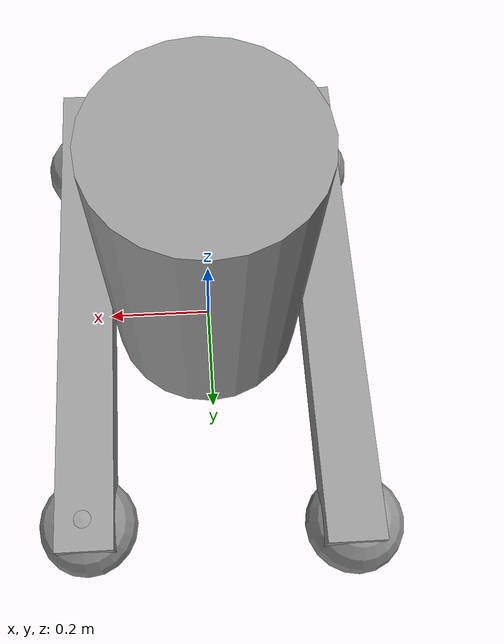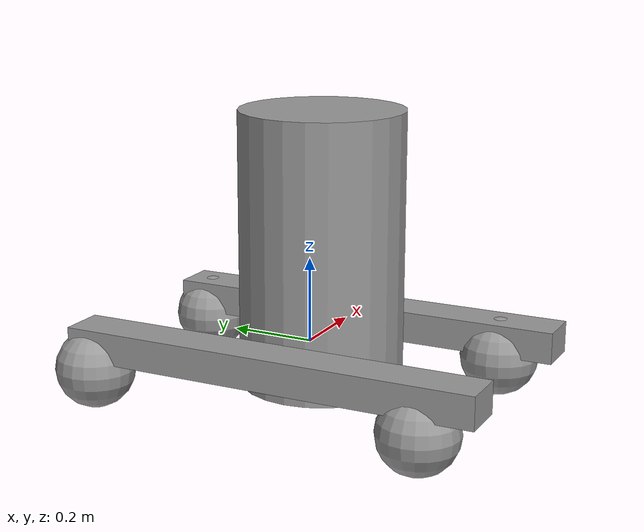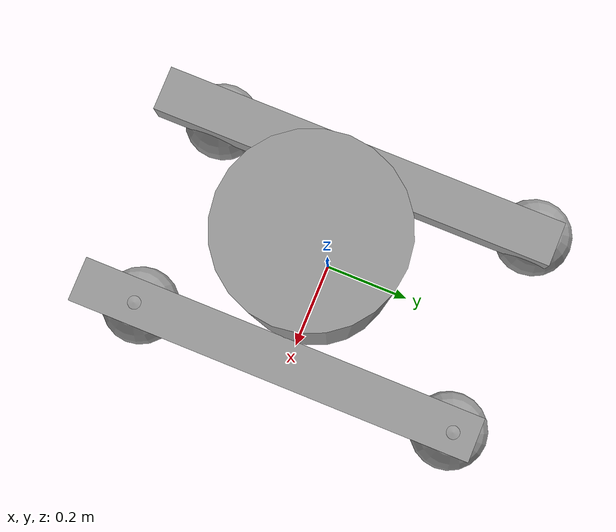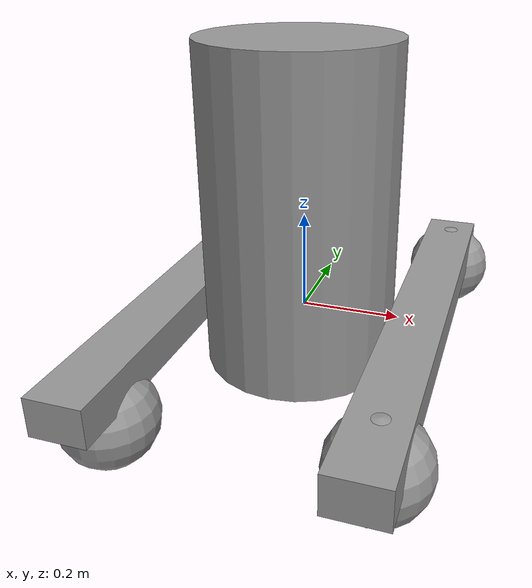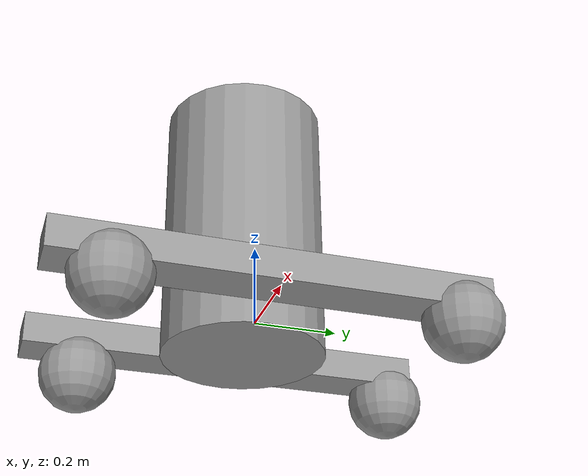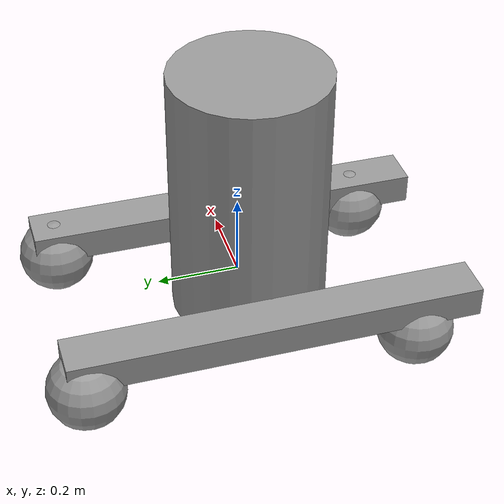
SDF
<?xml version='1.0'?>
<sdf version='1.6'>
  <model name='my_home_robot'>
    <link name='link_0'>
      <pose frame=''>-0.244653 -0.020924 0.010285 0 -0 0</pose>
      <inertial>
        <mass>0.00825354</mass>
        <inertia>
          <ixx>0.000691755</ixx>
          <ixy>0</ixy>
          <ixz>0</ixz>
          <iyy>1.20977e-05</iyy>
          <iyz>0</iyz>
          <izz>0.000695933</izz>
        </inertia>
        <pose frame=''>0 0 0 0 -0 0</pose>
      </inertial>
      <visual name='visual'>
        <pose frame=''>0 0 0 0 -0 0</pose>
        <geometry>
          <box>
            <size>0.108773 1 0.075875</size>
          </box>
        </geometry>
        <material>
          <lighting>1</lighting>
          <script>
            <uri>file://media/materials/scripts/gazebo.material</uri>
            <name>Gazebo/Grey</name>
          </script>
          <ambient>0.3 0.3 0.3 1</ambient>
          <diffuse>0.7 0.7 0.7 1</diffuse>
          <specular>0.01 0.01 0.01 1</specular>
          <emissive>0 0 0 1</emissive>
        </material>
        <transparency>0</transparency>
        <cast_shadows>1</cast_shadows>
      </visual>
      <collision name='collision'>
        <laser_retro>0</laser_retro>
        <max_contacts>10</max_contacts>
        <pose frame=''>0 0 0 0 -0 0</pose>
        <geometry>
          <box>
            <size>0.108773 1 0.075875</size>
          </box>
        </geometry>
        <surface>
          <friction>
            <ode>
              <mu>1</mu>
              <mu2>1</mu2>
              <fdir1>0 0 0</fdir1>
              <slip1>0</slip1>
              <slip2>0</slip2>
            </ode>
            <torsional>
              <coefficient>1</coefficient>
              <patch_radius>0</patch_radius>
              <surface_radius>0</surface_radius>
              <use_patch_radius>1</use_patch_radius>
              <ode>
                <slip>0</slip>
              </ode>
            </torsional>
          </friction>
          <bounce>
            <restitution_coefficient>0</restitution_coefficient>
            <threshold>1e+06</threshold>
          </bounce>
          <contact>
            <collide_without_contact>0</collide_without_contact>
            <collide_without_contact_bitmask>1</collide_without_contact_bitmask>
            <collide_bitmask>1</collide_bitmask>
            <ode>
              <soft_cfm>0</soft_cfm>
              <soft_erp>0.2</soft_erp>
              <kp>1e+13</kp>
              <kd>1</kd>
              <max_vel>0.01</max_vel>
              <min_depth>0</min_depth>
            </ode>
            <bullet>
              <split_impulse>1</split_impulse>
              <split_impulse_penetration_threshold>-0.01</split_impulse_penetration_threshold>
              <soft_cfm>0</soft_cfm>
              <soft_erp>0.2</soft_erp>
              <kp>1e+13</kp>
              <kd>1</kd>
            </bullet>
          </contact>
        </surface>
      </collision>
    </link>
    <link name='link_0_clone'>
      <pose frame=''>0.247459 -0.030453 -0.000446 0 -0 0</pose>
      <inertial>
        <mass>0.00825354</mass>
        <inertia>
          <ixx>0.000691755</ixx>
          <ixy>0</ixy>
          <ixz>0</ixz>
          <iyy>1.20977e-05</iyy>
          <iyz>0</iyz>
          <izz>0.000695933</izz>
        </inertia>
        <pose frame=''>0 0 0 0 -0 0</pose>
      </inertial>
      <visual name='visual'>
        <pose frame=''>0 0 0 0 -0 0</pose>
        <geometry>
          <box>
            <size>0.108773 1 0.075875</size>
          </box>
        </geometry>
        <material>
          <lighting>1</lighting>
          <script>
            <uri>file://media/materials/scripts/gazebo.material</uri>
            <name>Gazebo/Grey</name>
          </script>
          <ambient>0.3 0.3 0.3 1</ambient>
          <diffuse>0.7 0.7 0.7 1</diffuse>
          <specular>0.01 0.01 0.01 1</specular>
          <emissive>0 0 0 1</emissive>
          <shader type='pixel'/>
        </material>
        <transparency>0</transparency>
        <cast_shadows>1</cast_shadows>
      </visual>
      <collision name='collision'>
        <laser_retro>0</laser_retro>
        <max_contacts>10</max_contacts>
        <pose frame=''>0 0 0 0 -0 0</pose>
        <geometry>
          <box>
            <size>0.108773 1 0.075875</size>
          </box>
        </geometry>
        <surface>
          <friction>
            <ode>
              <mu>1</mu>
              <mu2>1</mu2>
              <fdir1>0 0 0</fdir1>
              <slip1>0</slip1>
              <slip2>0</slip2>
            </ode>
            <torsional>
              <coefficient>1</coefficient>
              <patch_radius>0</patch_radius>
              <surface_radius>0</surface_radius>
              <use_patch_radius>1</use_patch_radius>
              <ode>
                <slip>0</slip>
              </ode>
            </torsional>
          </friction>
          <bounce>
            <restitution_coefficient>0</restitution_coefficient>
            <threshold>1e+06</threshold>
          </bounce>
          <contact>
            <collide_without_contact>0</collide_without_contact>
            <collide_without_contact_bitmask>1</collide_without_contact_bitmask>
            <collide_bitmask>1</collide_bitmask>
            <ode>
              <soft_cfm>0</soft_cfm>
              <soft_erp>0.2</soft_erp>
              <kp>1e+13</kp>
              <kd>1</kd>
              <max_vel>0.01</max_vel>
              <min_depth>0</min_depth>
            </ode>
            <bullet>
              <split_impulse>1</split_impulse>
              <split_impulse_penetration_threshold>-0.01</split_impulse_penetration_threshold>
              <soft_cfm>0</soft_cfm>
              <soft_erp>0.2</soft_erp>
              <kp>1e+13</kp>
              <kd>1</kd>
            </bullet>
          </contact>
        </surface>
      </collision>
    </link>
    <link name='link_1'>
      <pose frame=''>-0.245407 -0.378361 -0.076364 0 -0 0</pose>
      <inertial>
        <mass>0.0067402</mass>
        <inertia>
          <ixx>2.40504e-05</ixx>
          <ixy>0</ixy>
          <ixz>0</ixz>
          <iyy>2.40504e-05</iyy>
          <iyz>0</iyz>
          <izz>2.40504e-05</izz>
        </inertia>
        <pose frame=''>0 0 0 0 -0 0</pose>
      </inertial>
      <visual name='visual'>
        <pose frame=''>0 0 0 0 -0 0</pose>
        <geometry>
          <sphere>
            <radius>0.0944485</radius>
          </sphere>
        </geometry>
        <material>
          <lighting>1</lighting>
          <script>
            <uri>file://media/materials/scripts/gazebo.material</uri>
            <name>Gazebo/Grey</name>
          </script>
          <ambient>0.3 0.3 0.3 1</ambient>
          <diffuse>0.7 0.7 0.7 1</diffuse>
          <specular>0.01 0.01 0.01 1</specular>
          <emissive>0 0 0 1</emissive>
        </material>
        <transparency>0</transparency>
        <cast_shadows>1</cast_shadows>
      </visual>
      <collision name='collision'>
        <laser_retro>0</laser_retro>
        <max_contacts>10</max_contacts>
        <pose frame=''>0 0 0 0 -0 0</pose>
        <geometry>
          <sphere>
            <radius>0.094448</radius>
          </sphere>
        </geometry>
        <surface>
          <friction>
            <ode>
              <mu>1</mu>
              <mu2>1</mu2>
              <fdir1>0 0 0</fdir1>
              <slip1>0</slip1>
              <slip2>0</slip2>
            </ode>
            <torsional>
              <coefficient>1</coefficient>
              <patch_radius>0</patch_radius>
              <surface_radius>0</surface_radius>
              <use_patch_radius>1</use_patch_radius>
              <ode>
                <slip>0</slip>
              </ode>
            </torsional>
          </friction>
          <bounce>
            <restitution_coefficient>0</restitution_coefficient>
            <threshold>1e+06</threshold>
          </bounce>
          <contact>
            <collide_without_contact>0</collide_without_contact>
            <collide_without_contact_bitmask>1</collide_without_contact_bitmask>
            <collide_bitmask>1</collide_bitmask>
            <ode>
              <soft_cfm>0</soft_cfm>
              <soft_erp>0.2</soft_erp>
              <kp>1e+13</kp>
              <kd>1</kd>
              <max_vel>0.01</max_vel>
              <min_depth>0</min_depth>
            </ode>
            <bullet>
              <split_impulse>1</split_impulse>
              <split_impulse_penetration_threshold>-0.01</split_impulse_penetration_threshold>
              <soft_cfm>0</soft_cfm>
              <soft_erp>0.2</soft_erp>
              <kp>1e+13</kp>
              <kd>1</kd>
            </bullet>
          </contact>
        </surface>
      </collision>
    </link>
    <link name='link_1_clone'>
      <pose frame=''>-0.258686 0.432742 -0.054398 0 -0 0</pose>
      <inertial>
        <mass>0.0067402</mass>
        <inertia>
          <ixx>2.40504e-05</ixx>
          <ixy>0</ixy>
          <ixz>0</ixz>
          <iyy>2.40504e-05</iyy>
          <iyz>0</iyz>
          <izz>2.40504e-05</izz>
        </inertia>
        <pose frame=''>0 0 0 0 -0 0</pose>
      </inertial>
      <visual name='visual'>
        <pose frame=''>0 0 0 0 -0 0</pose>
        <geometry>
          <sphere>
            <radius>0.0944485</radius>
          </sphere>
        </geometry>
        <material>
          <lighting>1</lighting>
          <script>
            <uri>file://media/materials/scripts/gazebo.material</uri>
            <name>Gazebo/Grey</name>
          </script>
          <ambient>0.3 0.3 0.3 1</ambient>
          <diffuse>0.7 0.7 0.7 1</diffuse>
          <specular>0.01 0.01 0.01 1</specular>
          <emissive>0 0 0 1</emissive>
          <shader type='pixel'/>
        </material>
        <transparency>0</transparency>
        <cast_shadows>1</cast_shadows>
      </visual>
      <collision name='collision'>
        <laser_retro>0</laser_retro>
        <max_contacts>10</max_contacts>
        <pose frame=''>0 0 0 0 -0 0</pose>
        <geometry>
          <sphere>
            <radius>0.094448</radius>
          </sphere>
        </geometry>
        <surface>
          <friction>
            <ode>
              <mu>1</mu>
              <mu2>1</mu2>
              <fdir1>0 0 0</fdir1>
              <slip1>0</slip1>
              <slip2>0</slip2>
            </ode>
            <torsional>
              <coefficient>1</coefficient>
              <patch_radius>0</patch_radius>
              <surface_radius>0</surface_radius>
              <use_patch_radius>1</use_patch_radius>
              <ode>
                <slip>0</slip>
              </ode>
            </torsional>
          </friction>
          <bounce>
            <restitution_coefficient>0</restitution_coefficient>
            <threshold>1e+06</threshold>
          </bounce>
          <contact>
            <collide_without_contact>0</collide_without_contact>
            <collide_without_contact_bitmask>1</collide_without_contact_bitmask>
            <collide_bitmask>1</collide_bitmask>
            <ode>
              <soft_cfm>0</soft_cfm>
              <soft_erp>0.2</soft_erp>
              <kp>1e+13</kp>
              <kd>1</kd>
              <max_vel>0.01</max_vel>
              <min_depth>0</min_depth>
            </ode>
            <bullet>
              <split_impulse>1</split_impulse>
              <split_impulse_penetration_threshold>-0.01</split_impulse_penetration_threshold>
              <soft_cfm>0</soft_cfm>
              <soft_erp>0.2</soft_erp>
              <kp>1e+13</kp>
              <kd>1</kd>
            </bullet>
          </contact>
        </surface>
      </collision>
    </link>
    <link name='link_1_clone_clone'>
      <pose frame=''>0.249418 -0.384995 -0.054398 0 -0 0</pose>
      <inertial>
        <mass>0.0067402</mass>
        <inertia>
          <ixx>2.40504e-05</ixx>
          <ixy>0</ixy>
          <ixz>0</ixz>
          <iyy>2.40504e-05</iyy>
          <iyz>0</iyz>
          <izz>2.40504e-05</izz>
        </inertia>
        <pose frame=''>0 0 0 0 -0 0</pose>
      </inertial>
      <visual name='visual'>
        <pose frame=''>0 0 0 0 -0 0</pose>
        <geometry>
          <sphere>
            <radius>0.0944485</radius>
          </sphere>
        </geometry>
        <material>
          <lighting>1</lighting>
          <script>
            <uri>file://media/materials/scripts/gazebo.material</uri>
            <name>Gazebo/Grey</name>
          </script>
          <ambient>0.3 0.3 0.3 1</ambient>
          <diffuse>0.7 0.7 0.7 1</diffuse>
          <specular>0.01 0.01 0.01 1</specular>
          <emissive>0 0 0 1</emissive>
          <shader type='pixel'/>
        </material>
        <transparency>0</transparency>
        <cast_shadows>1</cast_shadows>
      </visual>
      <collision name='collision'>
        <laser_retro>0</laser_retro>
        <max_contacts>10</max_contacts>
        <pose frame=''>0 0 0 0 -0 0</pose>
        <geometry>
          <sphere>
            <radius>0.094448</radius>
          </sphere>
        </geometry>
        <surface>
          <friction>
            <ode>
              <mu>1</mu>
              <mu2>1</mu2>
              <fdir1>0 0 0</fdir1>
              <slip1>0</slip1>
              <slip2>0</slip2>
            </ode>
            <torsional>
              <coefficient>1</coefficient>
              <patch_radius>0</patch_radius>
              <surface_radius>0</surface_radius>
              <use_patch_radius>1</use_patch_radius>
              <ode>
                <slip>0</slip>
              </ode>
            </torsional>
          </friction>
          <bounce>
            <restitution_coefficient>0</restitution_coefficient>
            <threshold>1e+06</threshold>
          </bounce>
          <contact>
            <collide_without_contact>0</collide_without_contact>
            <collide_without_contact_bitmask>1</collide_without_contact_bitmask>
            <collide_bitmask>1</collide_bitmask>
            <ode>
              <soft_cfm>0</soft_cfm>
              <soft_erp>0.2</soft_erp>
              <kp>1e+13</kp>
              <kd>1</kd>
              <max_vel>0.01</max_vel>
              <min_depth>0</min_depth>
            </ode>
            <bullet>
              <split_impulse>1</split_impulse>
              <split_impulse_penetration_threshold>-0.01</split_impulse_penetration_threshold>
              <soft_cfm>0</soft_cfm>
              <soft_erp>0.2</soft_erp>
              <kp>1e+13</kp>
              <kd>1</kd>
            </bullet>
          </contact>
        </surface>
      </collision>
    </link>
    <link name='link_1_clone_clone_0'>
      <pose frame=''>0.250395 0.412433 -0.054398 0 -0 0</pose>
      <inertial>
        <mass>0.0067402</mass>
        <inertia>
          <ixx>2.40504e-05</ixx>
          <ixy>0</ixy>
          <ixz>0</ixz>
          <iyy>2.40504e-05</iyy>
          <iyz>0</iyz>
          <izz>2.40504e-05</izz>
        </inertia>
        <pose frame=''>0 0 0 0 -0 0</pose>
      </inertial>
      <visual name='visual'>
        <pose frame=''>0 0 0 0 -0 0</pose>
        <geometry>
          <sphere>
            <radius>0.0944485</radius>
          </sphere>
        </geometry>
        <material>
          <lighting>1</lighting>
          <script>
            <uri>file://media/materials/scripts/gazebo.material</uri>
            <name>Gazebo/Grey</name>
          </script>
          <ambient>0.3 0.3 0.3 1</ambient>
          <diffuse>0.7 0.7 0.7 1</diffuse>
          <specular>0.01 0.01 0.01 1</specular>
          <emissive>0 0 0 1</emissive>
          <shader type='pixel'/>
        </material>
        <transparency>0</transparency>
        <cast_shadows>1</cast_shadows>
      </visual>
      <collision name='collision'>
        <laser_retro>0</laser_retro>
        <max_contacts>10</max_contacts>
        <pose frame=''>0 0 0 0 -0 0</pose>
        <geometry>
          <sphere>
            <radius>0.094448</radius>
          </sphere>
        </geometry>
        <surface>
          <friction>
            <ode>
              <mu>1</mu>
              <mu2>1</mu2>
              <fdir1>0 0 0</fdir1>
              <slip1>0</slip1>
              <slip2>0</slip2>
            </ode>
            <torsional>
              <coefficient>1</coefficient>
              <patch_radius>0</patch_radius>
              <surface_radius>0</surface_radius>
              <use_patch_radius>1</use_patch_radius>
              <ode>
                <slip>0</slip>
              </ode>
            </torsional>
          </friction>
          <bounce>
            <restitution_coefficient>0</restitution_coefficient>
            <threshold>1e+06</threshold>
          </bounce>
          <contact>
            <collide_without_contact>0</collide_without_contact>
            <collide_without_contact_bitmask>1</collide_without_contact_bitmask>
            <collide_bitmask>1</collide_bitmask>
            <ode>
              <soft_cfm>0</soft_cfm>
              <soft_erp>0.2</soft_erp>
              <kp>1e+13</kp>
              <kd>1</kd>
              <max_vel>0.01</max_vel>
              <min_depth>0</min_depth>
            </ode>
            <bullet>
              <split_impulse>1</split_impulse>
              <split_impulse_penetration_threshold>-0.01</split_impulse_penetration_threshold>
              <soft_cfm>0</soft_cfm>
              <soft_erp>0.2</soft_erp>
              <kp>1e+13</kp>
              <kd>1</kd>
            </bullet>
          </contact>
        </surface>
      </collision>
    </link>
    <link name='link_2'>
      <pose frame=''>0.00146 -0.030453 0.22972 0 -0 0</pose>
      <inertial>
        <mass>0.0956891</mass>
        <inertia>
          <ixx>0.00419688</ixx>
          <ixy>0</ixy>
          <ixz>0</ixz>
          <iyy>0.00419688</iyy>
          <iyz>0</iyz>
          <izz>0.00177691</izz>
        </inertia>
        <pose frame=''>0 0 0 0 -0 0</pose>
      </inertial>
      <visual name='visual'>
        <pose frame=''>0 0 0 0 -0 0</pose>
        <geometry>
          <cylinder>
            <radius>0.192691</radius>
            <length>0.64411</length>
          </cylinder>
        </geometry>
        <material>
          <lighting>1</lighting>
          <script>
            <uri>file://media/materials/scripts/gazebo.material</uri>
            <name>Gazebo/Grey</name>
          </script>
          <ambient>0.3 0.3 0.3 1</ambient>
          <diffuse>0.7 0.7 0.7 1</diffuse>
          <specular>0.01 0.01 0.01 1</specular>
          <emissive>0 0 0 1</emissive>
        </material>
        <transparency>0</transparency>
        <cast_shadows>1</cast_shadows>
      </visual>
      <collision name='collision'>
        <laser_retro>0</laser_retro>
        <max_contacts>10</max_contacts>
        <pose frame=''>0 0 0 0 -0 0</pose>
        <geometry>
          <cylinder>
            <radius>0.192691</radius>
            <length>0.64411</length>
          </cylinder>
        </geometry>
        <surface>
          <friction>
            <ode>
              <mu>1</mu>
              <mu2>1</mu2>
              <fdir1>0 0 0</fdir1>
              <slip1>0</slip1>
              <slip2>0</slip2>
            </ode>
            <torsional>
              <coefficient>1</coefficient>
              <patch_radius>0</patch_radius>
              <surface_radius>0</surface_radius>
              <use_patch_radius>1</use_patch_radius>
              <ode>
                <slip>0</slip>
              </ode>
            </torsional>
          </friction>
          <bounce>
            <restitution_coefficient>0</restitution_coefficient>
            <threshold>1e+06</threshold>
          </bounce>
          <contact>
            <collide_without_contact>0</collide_without_contact>
            <collide_without_contact_bitmask>1</collide_without_contact_bitmask>
            <collide_bitmask>1</collide_bitmask>
            <ode>
              <soft_cfm>0</soft_cfm>
              <soft_erp>0.2</soft_erp>
              <kp>1e+13</kp>
              <kd>1</kd>
              <max_vel>0.01</max_vel>
              <min_depth>0</min_depth>
            </ode>
            <bullet>
              <split_impulse>1</split_impulse>
              <split_impulse_penetration_threshold>-0.01</split_impulse_penetration_threshold>
              <soft_cfm>0</soft_cfm>
              <soft_erp>0.2</soft_erp>
              <kp>1e+13</kp>
              <kd>1</kd>
            </bullet>
          </contact>
        </surface>
      </collision>
    </link>
    <joint name='link_0_JOINT_0' type='ball'>
      <parent>link_0</parent>
      <child>link_1</child>
      <pose frame=''>0 0 0 0 -0 0</pose>
      <physics>
        <ode>
          <limit>
            <cfm>0</cfm>
            <erp>0.2</erp>
          </limit>
          <suspension>
            <cfm>0</cfm>
            <erp>0.2</erp>
          </suspension>
        </ode>
      </physics>
    </joint>
    <joint name='link_0_JOINT_1' type='ball'>
      <parent>link_0</parent>
      <child>link_1_clone</child>
      <pose frame=''>0 0 0 0 -0 0</pose>
      <physics>
        <ode>
          <limit>
            <cfm>0</cfm>
            <erp>0.2</erp>
          </limit>
          <suspension>
            <cfm>0</cfm>
            <erp>0.2</erp>
          </suspension>
        </ode>
      </physics>
    </joint>
    <joint name='link_0_clone_JOINT_2' type='ball'>
      <parent>link_0_clone</parent>
      <child>link_1_clone_clone</child>
      <pose frame=''>0 0 0 0 -0 0</pose>
      <physics>
        <ode>
          <limit>
            <cfm>0</cfm>
            <erp>0.2</erp>
          </limit>
          <suspension>
            <cfm>0</cfm>
            <erp>0.2</erp>
          </suspension>
        </ode>
      </physics>
    </joint>
    <joint name='link_0_clone_JOINT_3' type='revolute'>
      <parent>link_0_clone</parent>
      <child>link_1_clone_clone_0</child>
      <pose frame=''>0 0 0 0 -0 0</pose>
      <axis>
        <xyz>1 0 0</xyz>
        <use_parent_model_frame>0</use_parent_model_frame>
        <limit>
          <lower>-1.79769e+308</lower>
          <upper>1.79769e+308</upper>
          <effort>-1</effort>
          <velocity>-1</velocity>
        </limit>
        <dynamics>
          <spring_reference>0</spring_reference>
          <spring_stiffness>0</spring_stiffness>
          <damping>0</damping>
        </dynamics>
      </axis>
      <physics>
        <ode>
          <limit>
            <cfm>0</cfm>
            <erp>0.2</erp>
          </limit>
          <suspension>
            <cfm>0</cfm>
            <erp>0.2</erp>
          </suspension>
        </ode>
      </physics>
    </joint>
    <joint name='link_2_JOINT_4' type='fixed'>
      <parent>link_0</parent>
      <child>link_2</child>
      <pose frame=''>0 0 0 0 -0 0</pose>
      <physics>
        <ode>
          <limit>
            <cfm>0</cfm>
            <erp>0.2</erp>
          </limit>
          <suspension>
            <cfm>0</cfm>
            <erp>0.2</erp>
          </suspension>
        </ode>
      </physics>
    </joint>
    <joint name='link_2_JOINT_5' type='fixed'>
      <parent>link_0_clone</parent>
      <child>link_2</child>
      <pose frame=''>0 0 0 0 -0 0</pose>
      <physics>
        <ode>
          <limit>
            <cfm>0</cfm>
            <erp>0.2</erp>
          </limit>
          <suspension>
            <cfm>0</cfm>
            <erp>0.2</erp>
          </suspension>
        </ode>
      </physics>
    </joint>
    <static>0</static>
    <allow_auto_disable>1</allow_auto_disable>
  </model>
</sdf>
